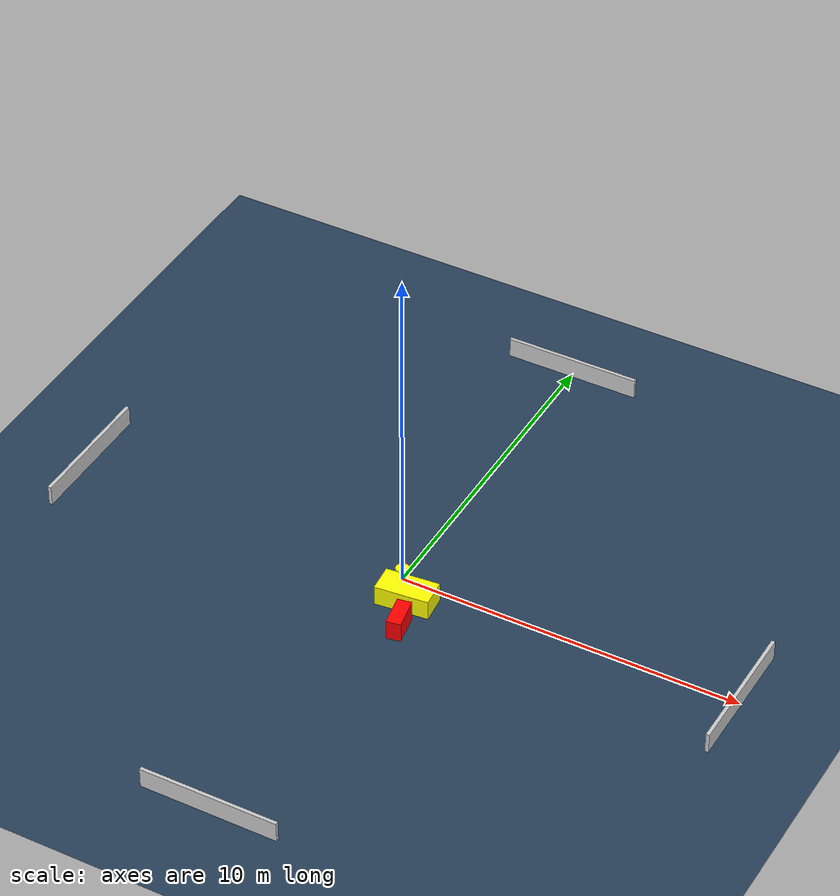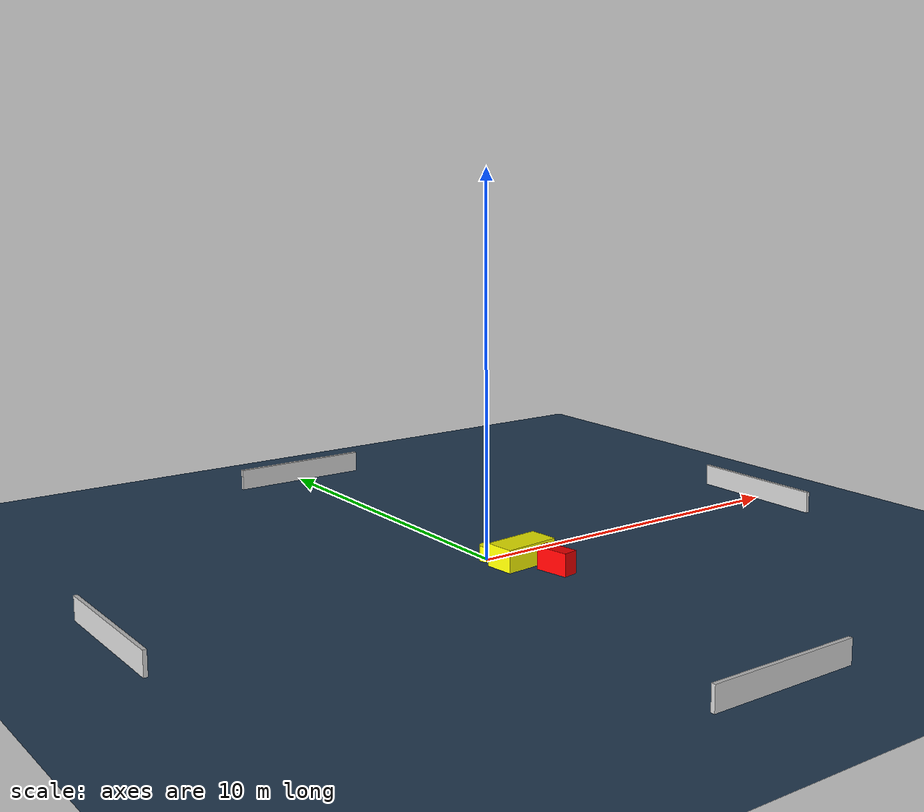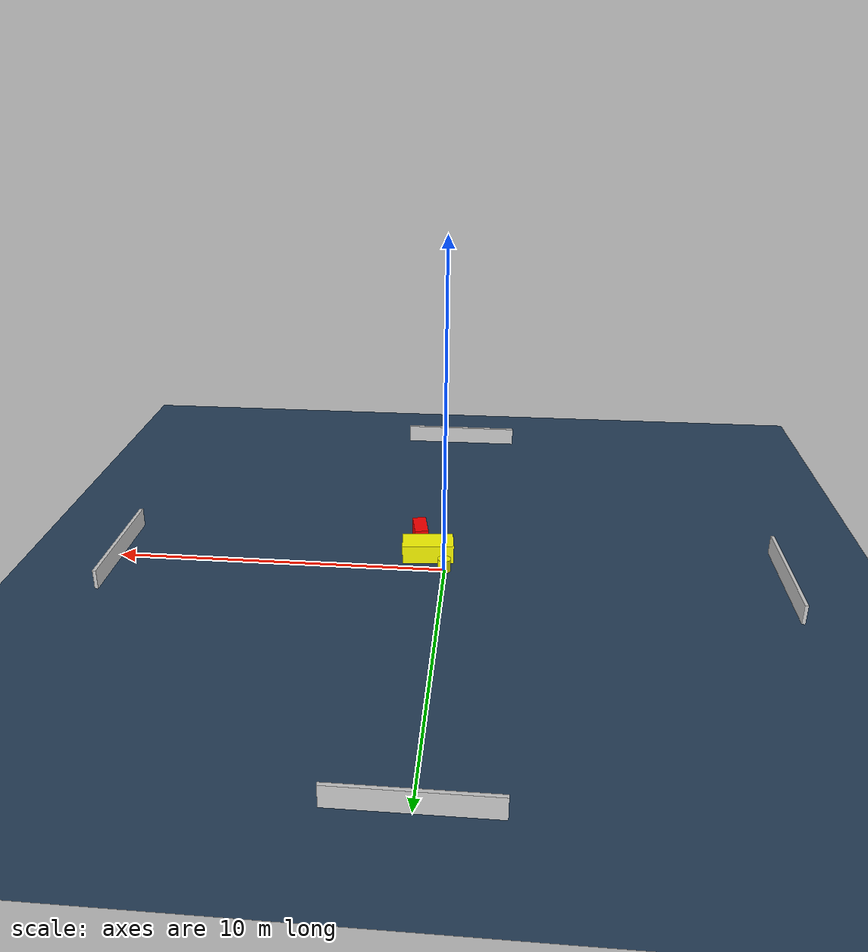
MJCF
<?xml version="1.0" ?>
<mujoco model="generated_environment">
  <option timestep="0.01" integrator="RK4" cone="elliptic"/>
  <default>
    <geom density="1"/>
  </default>
  <asset>
    <texture builtin="gradient" height="3072" name="skybox" rgb1="0.3 0.5 0.7" rgb2="0 0 0" type="skybox" width="512"/>
    <texture builtin="checker" height="300" name="groundplane" rgb1="0.2 0.3 0.4" rgb2="0.1 0.2 0.3" type="2d" width="300"/>
    <material name="groundplane" reflectance="0.2" texrepeat="5 5" texture="groundplane"/>
  </asset>
  <worldbody>
    <light dir="0 0 -1" directional="true" pos="0 0 1.5"/>
    <geom condim="3" friction="0.5 0.005 0.001" material="groundplane" name="floor" pos="0 0 0" size="0 0 0.05" type="plane"/>
    <body name="walls">
      <geom name="wall_1" condim="4" pos="-10.0 0.0 0.3" rgba="0.800000011920929 0.800000011920929 0.800000011920929 1.0" size="0.05 2.0 0.3" type="box"/>
      <geom name="wall_2" condim="4" pos="10.0 0.0 0.3" rgba="0.800000011920929 0.800000011920929 0.800000011920929 1.0" size="0.05 2.0 0.3" type="box"/>
      <geom name="wall_3" condim="4" pos="0.0 -10.0 0.3" rgba="0.800000011920929 0.800000011920929 0.800000011920929 1.0" size="2.0 0.05 0.3" type="box"/>
      <geom name="wall_4" condim="4" pos="0.0 10.0 0.3" rgba="0.800000011920929 0.800000011920929 0.800000011920929 1.0" size="2.0 0.05 0.3" type="box"/>
    </body>
    <body name="robot">
      <joint name="joint_x" type="slide" pos="0 0 0" axis="1 0 0"/>
      <joint name="joint_y" type="slide" pos="0 0 0" axis="0 1 0"/>
      <geom name="robot" type="cylinder" pos="0.0 0.0 0.2" size="0.2 0.2 0.0" mass="5.0" friction="1.0 0.005 0.0001" condim="4" rgba="1.0 1.0 0.0 1.0"/>
    </body>
    <body name="obstacle_1_movable">
      <geom name="obstacle_1_movable" condim="4" pos="0.5491776151118817 -0.7514878369508303 0.3" euler="0 0 185.60853153822987" friction="0.0 0.005 0.001" rgba="1.0 1.0 0.0 1.0" size="0.780223245000323 0.4042450716928417 0.3" type="box" mass="0.1"/>
      <joint type="free"/>
    </body>
    <body name="obstacle_2_static">
      <geom name="obstacle_2_static" condim="4" pos="0.8683576612321449 -1.7618649174417615 0.3" euler="0 0 280.18045818890954" friction="0.0 0.005 0.001" rgba="1.0 0.0 0.0 1.0" size="0.4663519401371797 0.2099640081370856 0.3" type="box"/>
    </body>
  </worldbody>
  <actuator>
    <motor name="actuator_x" joint="joint_x" gear="1" ctrlrange="-1 1"/>
    <motor name="actuator_y" joint="joint_y" gear="1" ctrlrange="-1 1"/>
  </actuator>
</mujoco>
